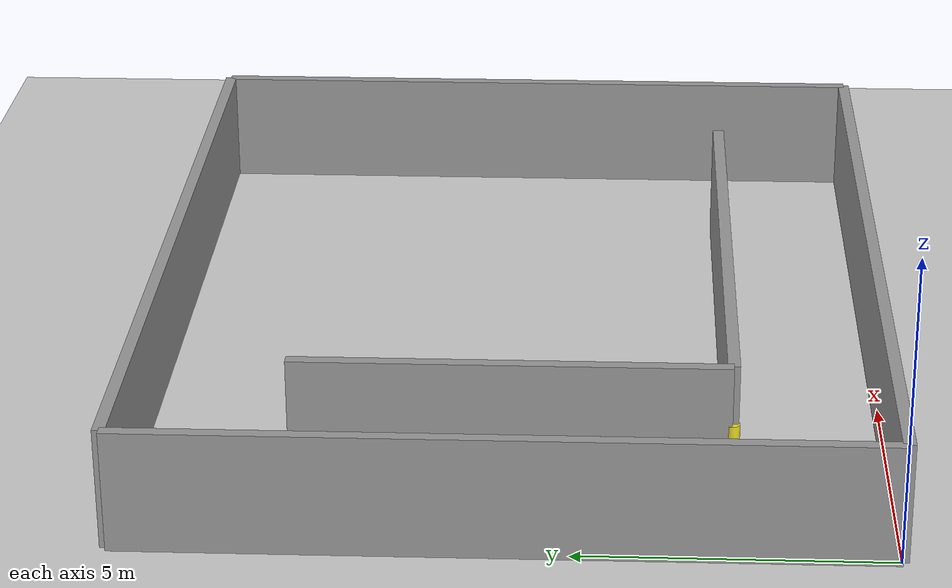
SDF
<?xml version="1.0" ?>
<sdf version="1.6">
  <world name="indoor_standard_world">
    <include><uri>model://sun</uri></include>
    <include><uri>model://ground_plane</uri></include>

    <model name='enclosure'>
      <static>1</static>
      <link name='link'>
        <visual name='north'><pose>7.5 12 1 0 0 0</pose><geometry><box><size>15 0.2 2</size></box></geometry>
          <material><script><uri>file://media/materials/scripts/gazebo.material</uri><name>Gazebo/Grey</name></script></material></visual>
        <collision name='north_c'><pose>7.5 12 1 0 0 0</pose><geometry><box><size>15 0.2 2</size></box></geometry></collision>

        <visual name='south'><pose>7.5 0 1 0 0 0</pose><geometry><box><size>15 0.2 2</size></box></geometry>
          <material><script><uri>file://media/materials/scripts/gazebo.material</uri><name>Gazebo/Grey</name></script></material></visual>
        <collision name='south_c'><pose>7.5 0 1 0 0 0</pose><geometry><box><size>15 0.2 2</size></box></geometry></collision>

        <visual name='west'><pose>0 6 1 0 0 1.57</pose><geometry><box><size>12 0.2 2</size></box></geometry>
          <material><script><uri>file://media/materials/scripts/gazebo.material</uri><name>Gazebo/Grey</name></script></material></visual>
        <collision name='west_c'><pose>0 6 1 0 0 1.57</pose><geometry><box><size>12 0.2 2</size></box></geometry></collision>

        <visual name='east'><pose>15 6 1 0 0 1.57</pose><geometry><box><size>12 0.2 2</size></box></geometry>
          <material><script><uri>file://media/materials/scripts/gazebo.material</uri><name>Gazebo/Grey</name></script></material></visual>
        <collision name='east_c'><pose>15 6 1 0 0 1.57</pose><geometry><box><size>12 0.2 2</size></box></geometry></collision>
      </link>
    </model>

    <model name='inner_L_wall'>
      <static>1</static>
      <pose>2.5 2.5 0 0 0 0</pose>
      <link name='link'>
        <visual name='v1'><pose>5 0 1 0 0 0</pose><geometry><box><size>10 0.2 2</size></box></geometry>
          <material><script><uri>file://media/materials/scripts/gazebo.material</uri><name>Gazebo/Grey</name></script></material></visual>
        <collision name='c1'><pose>5 0 1 0 0 0</pose><geometry><box><size>10 0.2 2</size></box></geometry></collision>

        <visual name='v2'><pose>0 3.5 1 0 0 1.57</pose><geometry><box><size>7 0.2 2</size></box></geometry>
          <material><script><uri>file://media/materials/scripts/gazebo.material</uri><name>Gazebo/Grey</name></script></material></visual>
        <collision name='c2'><pose>0 3.5 1 0 0 1.57</pose><geometry><box><size>7 0.2 2</size></box></geometry></collision>
      </link>
    </model>

    <model name='corner_pole'>
      <static>1</static>
      <pose>2.5 2.5 0 0 0 0</pose>
      <link name='pole'><pose>0 0 0.5 0 0 0</pose><visual name='v'><geometry><cylinder><radius>0.12</radius><length>1</length></cylinder></geometry>
        <material><script><uri>file://media/materials/scripts/gazebo.material</uri><name>Gazebo/Yellow</name></script></material></visual>
        <collision name='c'><geometry><cylinder><radius>0.12</radius><length>1</length></cylinder></geometry></collision>
      </link>
    </model>
  </world>
</sdf>
